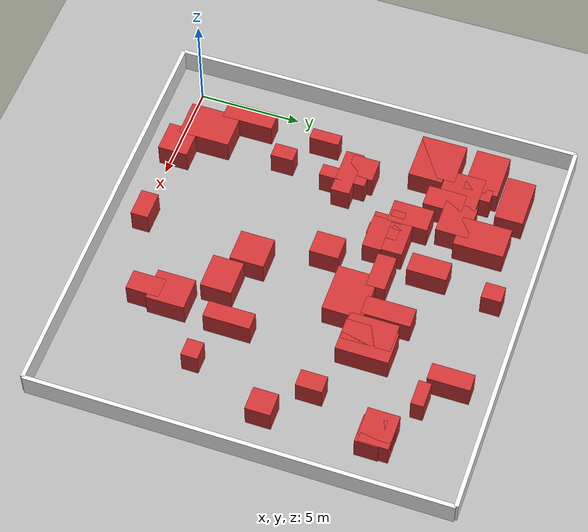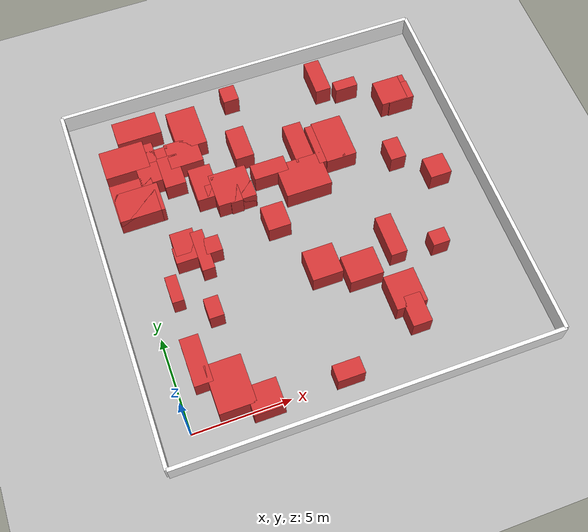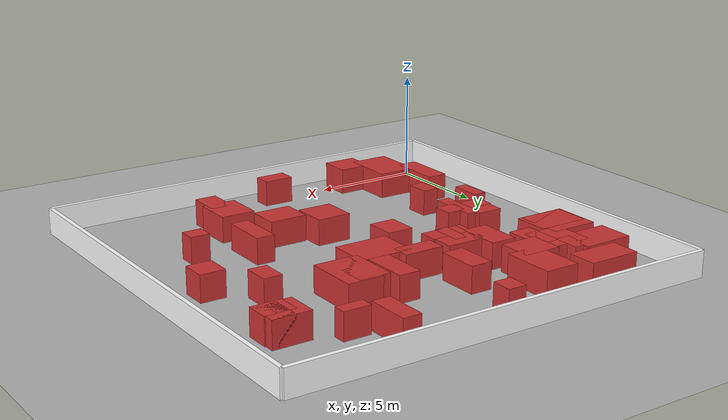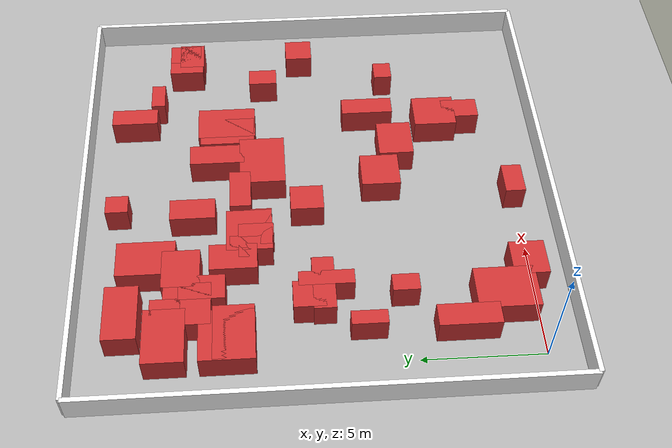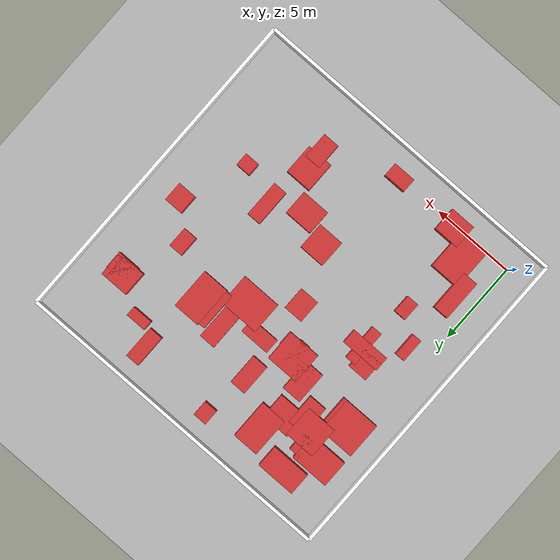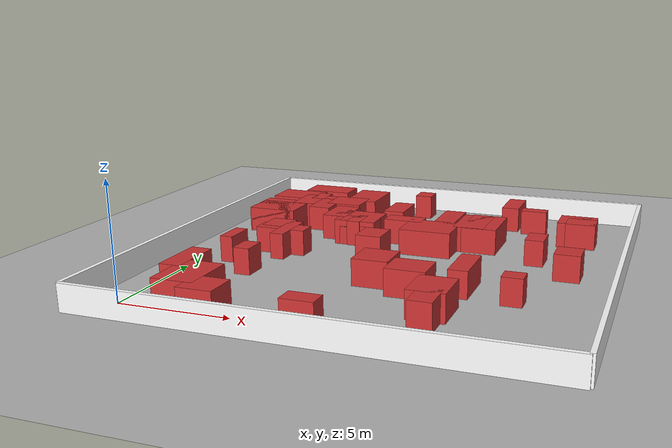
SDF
<?xml version="1.0"?>
<sdf version="1.8">
  <world name="random_room">
    <physics name="10ms" type="ignored">
      <max_step_size>0.01</max_step_size>
      <real_time_factor>1.0</real_time_factor>
    </physics>
    <plugin filename="gz-sim-physics-system"          name="gz::sim::systems::Physics"/>
    <plugin filename="gz-sim-user-commands-system"    name="gz::sim::systems::UserCommands"/>
    <plugin filename="gz-sim-scene-broadcaster-system" name="gz::sim::systems::SceneBroadcaster"/>
    <plugin filename="gz-sim-sensors-system"          name="gz::sim::systems::Sensors">
      <render_engine>ogre2</render_engine>
    </plugin>
    <light name="sun" type="directional">
      <cast_shadows>true</cast_shadows>
      <pose>0 0 10 0 0 0</pose>
      <diffuse>1 1 1 1</diffuse>
      <specular>0.5 0.5 0.5 1</specular>
      <direction>-0.5 0.1 -0.9</direction>
    </light>

    <model name="ground_plane">
      <static>true</static>
      <pose>8.5000 8.5000 0 0 0 0</pose>
      <link name="link">
        <collision name="c">
          <geometry><plane><normal>0 0 1</normal><size>20.0 20.0</size></plane></geometry>
        </collision>
        <visual name="v">
          <geometry><plane><normal>0 0 1</normal><size>20.0 20.0</size></plane></geometry>
          <material><ambient>0.7 0.7 0.7 1</ambient><diffuse>0.7 0.7 0.7 1</diffuse></material>
        </visual>
      </link>
    </model>
    <model name="wall_north">
      <static>true</static>
      <pose>8.5000 18.5000 0.6000 0 0 0</pose>
      <link name="link">
        <collision name="c">
          <geometry><box><size>20.0000 0.2000 1.2000</size></box></geometry>
        </collision>
        <visual name="v">
          <geometry><box><size>20.0000 0.2000 1.2000</size></box></geometry>
          <material>
            <ambient>1.0 1.0 1.0 1</ambient>
            <diffuse>1.0 1.0 1.0 1</diffuse>
          </material>
        </visual>
      </link>
    </model>
    <model name="wall_south">
      <static>true</static>
      <pose>8.5000 -1.5000 0.6000 0 0 0</pose>
      <link name="link">
        <collision name="c">
          <geometry><box><size>20.0000 0.2000 1.2000</size></box></geometry>
        </collision>
        <visual name="v">
          <geometry><box><size>20.0000 0.2000 1.2000</size></box></geometry>
          <material>
            <ambient>1.0 1.0 1.0 1</ambient>
            <diffuse>1.0 1.0 1.0 1</diffuse>
          </material>
        </visual>
      </link>
    </model>
    <model name="wall_east">
      <static>true</static>
      <pose>18.5000 8.5000 0.6000 0 0 0</pose>
      <link name="link">
        <collision name="c">
          <geometry><box><size>0.2000 20.0000 1.2000</size></box></geometry>
        </collision>
        <visual name="v">
          <geometry><box><size>0.2000 20.0000 1.2000</size></box></geometry>
          <material>
            <ambient>1.0 1.0 1.0 1</ambient>
            <diffuse>1.0 1.0 1.0 1</diffuse>
          </material>
        </visual>
      </link>
    </model>
    <model name="wall_west">
      <static>true</static>
      <pose>-1.5000 8.5000 0.6000 0 0 0</pose>
      <link name="link">
        <collision name="c">
          <geometry><box><size>0.2000 20.0000 1.2000</size></box></geometry>
        </collision>
        <visual name="v">
          <geometry><box><size>0.2000 20.0000 1.2000</size></box></geometry>
          <material>
            <ambient>1.0 1.0 1.0 1</ambient>
            <diffuse>1.0 1.0 1.0 1</diffuse>
          </material>
        </visual>
      </link>
    </model>
    <model name="obs_0">
      <static>true</static>
      <pose>16.2750 14.2500 0.6000 0 0 0</pose>
      <link name="link">
        <collision name="c">
          <geometry><box><size>1.0500 1.4000 1.2000</size></box></geometry>
        </collision>
        <visual name="v">
          <geometry><box><size>1.0500 1.4000 1.2000</size></box></geometry>
          <material>
            <ambient>0.8 0.2 0.2 1</ambient>
            <diffuse>0.8 0.2 0.2 1</diffuse>
          </material>
        </visual>
      </link>
    </model>
    <model name="obs_1">
      <static>true</static>
      <pose>4.6000 15.6500 0.6000 0 0 0</pose>
      <link name="link">
        <collision name="c">
          <geometry><box><size>1.6000 2.4000 1.2000</size></box></geometry>
        </collision>
        <visual name="v">
          <geometry><box><size>1.6000 2.4000 1.2000</size></box></geometry>
          <material>
            <ambient>0.8 0.2 0.2 1</ambient>
            <diffuse>0.8 0.2 0.2 1</diffuse>
          </material>
        </visual>
      </link>
    </model>
    <model name="obs_2">
      <static>true</static>
      <pose>2.3500 13.9500 0.6000 0 0 0</pose>
      <link name="link">
        <collision name="c">
          <geometry><box><size>1.9000 1.9000 1.2000</size></box></geometry>
        </collision>
        <visual name="v">
          <geometry><box><size>1.9000 1.9000 1.2000</size></box></geometry>
          <material>
            <ambient>0.8 0.2 0.2 1</ambient>
            <diffuse>0.8 0.2 0.2 1</diffuse>
          </material>
        </visual>
      </link>
    </model>
    <model name="obs_3">
      <static>true</static>
      <pose>12.1000 1.8500 0.6000 0 0 0</pose>
      <link name="link">
        <collision name="c">
          <geometry><box><size>1.0000 1.6000 1.2000</size></box></geometry>
        </collision>
        <visual name="v">
          <geometry><box><size>1.0000 1.6000 1.2000</size></box></geometry>
          <material>
            <ambient>0.8 0.2 0.2 1</ambient>
            <diffuse>0.8 0.2 0.2 1</diffuse>
          </material>
        </visual>
      </link>
    </model>
    <model name="obs_4">
      <static>true</static>
      <pose>5.8000 11.4500 0.6000 0 0 0</pose>
      <link name="link">
        <collision name="c">
          <geometry><box><size>2.0000 1.9000 1.2000</size></box></geometry>
        </collision>
        <visual name="v">
          <geometry><box><size>2.0000 1.9000 1.2000</size></box></geometry>
          <material>
            <ambient>0.8 0.2 0.2 1</ambient>
            <diffuse>0.8 0.2 0.2 1</diffuse>
          </material>
        </visual>
      </link>
    </model>
    <model name="obs_5">
      <static>true</static>
      <pose>8.7000 5.7750 0.6000 0 0 0</pose>
      <link name="link">
        <collision name="c">
          <geometry><box><size>1.6000 1.6500 1.2000</size></box></geometry>
        </collision>
        <visual name="v">
          <geometry><box><size>1.6000 1.6500 1.2000</size></box></geometry>
          <material>
            <ambient>0.8 0.2 0.2 1</ambient>
            <diffuse>0.8 0.2 0.2 1</diffuse>
          </material>
        </visual>
      </link>
    </model>
    <model name="obs_6">
      <static>true</static>
      <pose>12.4750 6.0250 0.6000 0 0 0</pose>
      <link name="link">
        <collision name="c">
          <geometry><box><size>0.8500 2.2500 1.2000</size></box></geometry>
        </collision>
        <visual name="v">
          <geometry><box><size>0.8500 2.2500 1.2000</size></box></geometry>
          <material>
            <ambient>0.8 0.2 0.2 1</ambient>
            <diffuse>0.8 0.2 0.2 1</diffuse>
          </material>
        </visual>
      </link>
    </model>
    <model name="obs_7">
      <static>true</static>
      <pose>14.5750 10.6750 0.6000 0 0 0</pose>
      <link name="link">
        <collision name="c">
          <geometry><box><size>0.8500 1.2500 1.2000</size></box></geometry>
        </collision>
        <visual name="v">
          <geometry><box><size>0.8500 1.2500 1.2000</size></box></geometry>
          <material>
            <ambient>0.8 0.2 0.2 1</ambient>
            <diffuse>0.8 0.2 0.2 1</diffuse>
          </material>
        </visual>
      </link>
    </model>
    <model name="obs_8">
      <static>true</static>
      <pose>2.2500 14.8000 0.6000 0 0 0</pose>
      <link name="link">
        <collision name="c">
          <geometry><box><size>0.7000 1.2000 1.2000</size></box></geometry>
        </collision>
        <visual name="v">
          <geometry><box><size>0.7000 1.2000 1.2000</size></box></geometry>
          <material>
            <ambient>0.8 0.2 0.2 1</ambient>
            <diffuse>0.8 0.2 0.2 1</diffuse>
          </material>
        </visual>
      </link>
    </model>
    <model name="obs_9">
      <static>true</static>
      <pose>7.3500 9.0000 0.6000 0 0 0</pose>
      <link name="link">
        <collision name="c">
          <geometry><box><size>1.2000 1.4000 1.2000</size></box></geometry>
        </collision>
        <visual name="v">
          <geometry><box><size>1.2000 1.4000 1.2000</size></box></geometry>
          <material>
            <ambient>0.8 0.2 0.2 1</ambient>
            <diffuse>0.8 0.2 0.2 1</diffuse>
          </material>
        </visual>
      </link>
    </model>
    <model name="obs_10">
      <static>true</static>
      <pose>16.1500 13.9500 0.6000 0 0 0</pose>
      <link name="link">
        <collision name="c">
          <geometry><box><size>1.4000 1.1000 1.2000</size></box></geometry>
        </collision>
        <visual name="v">
          <geometry><box><size>1.4000 1.1000 1.2000</size></box></geometry>
          <material>
            <ambient>0.8 0.2 0.2 1</ambient>
            <diffuse>0.8 0.2 0.2 1</diffuse>
          </material>
        </visual>
      </link>
    </model>
    <model name="obs_11">
      <static>true</static>
      <pose>5.7750 11.1750 0.6000 0 0 0</pose>
      <link name="link">
        <collision name="c">
          <geometry><box><size>0.6500 1.4500 1.2000</size></box></geometry>
        </collision>
        <visual name="v">
          <geometry><box><size>0.6500 1.4500 1.2000</size></box></geometry>
          <material>
            <ambient>0.8 0.2 0.2 1</ambient>
            <diffuse>0.8 0.2 0.2 1</diffuse>
          </material>
        </visual>
      </link>
    </model>
    <model name="obs_12">
      <static>true</static>
      <pose>2.1000 16.5250 0.6000 0 0 0</pose>
      <link name="link">
        <collision name="c">
          <geometry><box><size>2.4000 1.3500 1.2000</size></box></geometry>
        </collision>
        <visual name="v">
          <geometry><box><size>2.4000 1.3500 1.2000</size></box></geometry>
          <material>
            <ambient>0.8 0.2 0.2 1</ambient>
            <diffuse>0.8 0.2 0.2 1</diffuse>
          </material>
        </visual>
      </link>
    </model>
    <model name="obs_13">
      <static>true</static>
      <pose>3.7750 0.2250 0.6000 0 0 0</pose>
      <link name="link">
        <collision name="c">
          <geometry><box><size>1.5500 1.4500 1.2000</size></box></geometry>
        </collision>
        <visual name="v">
          <geometry><box><size>1.5500 1.4500 1.2000</size></box></geometry>
          <material>
            <ambient>0.8 0.2 0.2 1</ambient>
            <diffuse>0.8 0.2 0.2 1</diffuse>
          </material>
        </visual>
      </link>
    </model>
    <model name="obs_14">
      <static>true</static>
      <pose>11.7750 12.3500 0.6000 0 0 0</pose>
      <link name="link">
        <collision name="c">
          <geometry><box><size>1.6500 2.5000 1.2000</size></box></geometry>
        </collision>
        <visual name="v">
          <geometry><box><size>1.6500 2.5000 1.2000</size></box></geometry>
          <material>
            <ambient>0.8 0.2 0.2 1</ambient>
            <diffuse>0.8 0.2 0.2 1</diffuse>
          </material>
        </visual>
      </link>
    </model>
    <model name="obs_15">
      <static>true</static>
      <pose>11.2750 12.3250 0.6000 0 0 0</pose>
      <link name="link">
        <collision name="c">
          <geometry><box><size>1.4500 2.3500 1.2000</size></box></geometry>
        </collision>
        <visual name="v">
          <geometry><box><size>1.4500 2.3500 1.2000</size></box></geometry>
          <material>
            <ambient>0.8 0.2 0.2 1</ambient>
            <diffuse>0.8 0.2 0.2 1</diffuse>
          </material>
        </visual>
      </link>
    </model>
    <model name="obs_16">
      <static>true</static>
      <pose>3.1000 13.3750 0.6000 0 0 0</pose>
      <link name="link">
        <collision name="c">
          <geometry><box><size>1.1000 1.8500 1.2000</size></box></geometry>
        </collision>
        <visual name="v">
          <geometry><box><size>1.1000 1.8500 1.2000</size></box></geometry>
          <material>
            <ambient>0.8 0.2 0.2 1</ambient>
            <diffuse>0.8 0.2 0.2 1</diffuse>
          </material>
        </visual>
      </link>
    </model>
    <model name="obs_17">
      <static>true</static>
      <pose>9.5250 10.8250 0.6000 0 0 0</pose>
      <link name="link">
        <collision name="c">
          <geometry><box><size>2.4500 1.9500 1.2000</size></box></geometry>
        </collision>
        <visual name="v">
          <geometry><box><size>2.4500 1.9500 1.2000</size></box></geometry>
          <material>
            <ambient>0.8 0.2 0.2 1</ambient>
            <diffuse>0.8 0.2 0.2 1</diffuse>
          </material>
        </visual>
      </link>
    </model>
    <model name="obs_18">
      <static>true</static>
      <pose>1.2750 3.0000 0.6000 0 0 0</pose>
      <link name="link">
        <collision name="c">
          <geometry><box><size>0.9500 2.5000 1.2000</size></box></geometry>
        </collision>
        <visual name="v">
          <geometry><box><size>0.9500 2.5000 1.2000</size></box></geometry>
          <material>
            <ambient>0.8 0.2 0.2 1</ambient>
            <diffuse>0.8 0.2 0.2 1</diffuse>
          </material>
        </visual>
      </link>
    </model>
    <model name="obs_19">
      <static>true</static>
      <pose>4.5000 12.1250 0.6000 0 0 0</pose>
      <link name="link">
        <collision name="c">
          <geometry><box><size>1.2000 1.9500 1.2000</size></box></geometry>
        </collision>
        <visual name="v">
          <geometry><box><size>1.2000 1.9500 1.2000</size></box></geometry>
          <material>
            <ambient>0.8 0.2 0.2 1</ambient>
            <diffuse>0.8 0.2 0.2 1</diffuse>
          </material>
        </visual>
      </link>
    </model>
    <model name="obs_20">
      <static>true</static>
      <pose>7.4250 16.9750 0.6000 0 0 0</pose>
      <link name="link">
        <collision name="c">
          <geometry><box><size>0.8500 0.9500 1.2000</size></box></geometry>
        </collision>
        <visual name="v">
          <geometry><box><size>0.8500 0.9500 1.2000</size></box></geometry>
          <material>
            <ambient>0.8 0.2 0.2 1</ambient>
            <diffuse>0.8 0.2 0.2 1</diffuse>
          </material>
        </visual>
      </link>
    </model>
    <model name="obs_21">
      <static>true</static>
      <pose>12.0000 3.0250 0.6000 0 0 0</pose>
      <link name="link">
        <collision name="c">
          <geometry><box><size>1.6000 1.8500 1.2000</size></box></geometry>
        </collision>
        <visual name="v">
          <geometry><box><size>1.6000 1.8500 1.2000</size></box></geometry>
          <material>
            <ambient>0.8 0.2 0.2 1</ambient>
            <diffuse>0.8 0.2 0.2 1</diffuse>
          </material>
        </visual>
      </link>
    </model>
    <model name="obs_22">
      <static>true</static>
      <pose>2.8750 5.3000 0.6000 0 0 0</pose>
      <link name="link">
        <collision name="c">
          <geometry><box><size>0.7500 1.1000 1.2000</size></box></geometry>
        </collision>
        <visual name="v">
          <geometry><box><size>0.7500 1.1000 1.2000</size></box></geometry>
          <material>
            <ambient>0.8 0.2 0.2 1</ambient>
            <diffuse>0.8 0.2 0.2 1</diffuse>
          </material>
        </visual>
      </link>
    </model>
    <model name="obs_23">
      <static>true</static>
      <pose>0.9750 14.8250 0.6000 0 0 0</pose>
      <link name="link">
        <collision name="c">
          <geometry><box><size>2.3500 1.6500 1.2000</size></box></geometry>
        </collision>
        <visual name="v">
          <geometry><box><size>2.3500 1.6500 1.2000</size></box></geometry>
          <material>
            <ambient>0.8 0.2 0.2 1</ambient>
            <diffuse>0.8 0.2 0.2 1</diffuse>
          </material>
        </visual>
      </link>
    </model>
    <model name="obs_24">
      <static>true</static>
      <pose>3.0500 8.5500 0.6000 0 0 0</pose>
      <link name="link">
        <collision name="c">
          <geometry><box><size>2.4000 0.9000 1.2000</size></box></geometry>
        </collision>
        <visual name="v">
          <geometry><box><size>2.4000 0.9000 1.2000</size></box></geometry>
          <material>
            <ambient>0.8 0.2 0.2 1</ambient>
            <diffuse>0.8 0.2 0.2 1</diffuse>
          </material>
        </visual>
      </link>
    </model>
    <model name="obs_25">
      <static>true</static>
      <pose>7.9000 0.1250 0.6000 0 0 0</pose>
      <link name="link">
        <collision name="c">
          <geometry><box><size>1.4000 0.8500 1.2000</size></box></geometry>
        </collision>
        <visual name="v">
          <geometry><box><size>1.4000 0.8500 1.2000</size></box></geometry>
          <material>
            <ambient>0.8 0.2 0.2 1</ambient>
            <diffuse>0.8 0.2 0.2 1</diffuse>
          </material>
        </visual>
      </link>
    </model>
    <model name="obs_26">
      <static>true</static>
      <pose>4.8000 11.5750 0.6000 0 0 0</pose>
      <link name="link">
        <collision name="c">
          <geometry><box><size>0.7000 0.6500 1.2000</size></box></geometry>
        </collision>
        <visual name="v">
          <geometry><box><size>0.7000 0.6500 1.2000</size></box></geometry>
          <material>
            <ambient>0.8 0.2 0.2 1</ambient>
            <diffuse>0.8 0.2 0.2 1</diffuse>
          </material>
        </visual>
      </link>
    </model>
    <model name="obs_27">
      <static>true</static>
      <pose>0.9000 12.4000 0.6000 0 0 0</pose>
      <link name="link">
        <collision name="c">
          <geometry><box><size>2.2000 2.2000 1.2000</size></box></geometry>
        </collision>
        <visual name="v">
          <geometry><box><size>2.2000 2.2000 1.2000</size></box></geometry>
          <material>
            <ambient>0.8 0.2 0.2 1</ambient>
            <diffuse>0.8 0.2 0.2 1</diffuse>
          </material>
        </visual>
      </link>
    </model>
    <model name="obs_28">
      <static>true</static>
      <pose>3.2750 8.4250 0.6000 0 0 0</pose>
      <link name="link">
        <collision name="c">
          <geometry><box><size>0.6500 2.2500 1.2000</size></box></geometry>
        </collision>
        <visual name="v">
          <geometry><box><size>0.6500 2.2500 1.2000</size></box></geometry>
          <material>
            <ambient>0.8 0.2 0.2 1</ambient>
            <diffuse>0.8 0.2 0.2 1</diffuse>
          </material>
        </visual>
      </link>
    </model>
    <model name="obs_29">
      <static>true</static>
      <pose>7.0000 13.8000 0.6000 0 0 0</pose>
      <link name="link">
        <collision name="c">
          <geometry><box><size>1.0000 1.9000 1.2000</size></box></geometry>
        </collision>
        <visual name="v">
          <geometry><box><size>1.0000 1.9000 1.2000</size></box></geometry>
          <material>
            <ambient>0.8 0.2 0.2 1</ambient>
            <diffuse>0.8 0.2 0.2 1</diffuse>
          </material>
        </visual>
      </link>
    </model>
    <model name="obs_30">
      <static>true</static>
      <pose>5.9500 10.9500 0.6000 0 0 0</pose>
      <link name="link">
        <collision name="c">
          <geometry><box><size>1.8000 0.9000 1.2000</size></box></geometry>
        </collision>
        <visual name="v">
          <geometry><box><size>1.8000 0.9000 1.2000</size></box></geometry>
          <material>
            <ambient>0.8 0.2 0.2 1</ambient>
            <diffuse>0.8 0.2 0.2 1</diffuse>
          </material>
        </visual>
      </link>
    </model>
    <model name="obs_31">
      <static>true</static>
      <pose>2.5500 9.1500 0.6000 0 0 0</pose>
      <link name="link">
        <collision name="c">
          <geometry><box><size>1.2000 1.3000 1.2000</size></box></geometry>
        </collision>
        <visual name="v">
          <geometry><box><size>1.2000 1.3000 1.2000</size></box></geometry>
          <material>
            <ambient>0.8 0.2 0.2 1</ambient>
            <diffuse>0.8 0.2 0.2 1</diffuse>
          </material>
        </visual>
      </link>
    </model>
    <model name="obs_32">
      <static>true</static>
      <pose>9.9500 12.7750 0.6000 0 0 0</pose>
      <link name="link">
        <collision name="c">
          <geometry><box><size>1.0000 2.3500 1.2000</size></box></geometry>
        </collision>
        <visual name="v">
          <geometry><box><size>1.0000 2.3500 1.2000</size></box></geometry>
          <material>
            <ambient>0.8 0.2 0.2 1</ambient>
            <diffuse>0.8 0.2 0.2 1</diffuse>
          </material>
        </visual>
      </link>
    </model>
    <model name="obs_33">
      <static>true</static>
      <pose>12.3750 16.4500 0.6000 0 0 0</pose>
      <link name="link">
        <collision name="c">
          <geometry><box><size>0.8500 2.0000 1.2000</size></box></geometry>
        </collision>
        <visual name="v">
          <geometry><box><size>0.8500 2.0000 1.2000</size></box></geometry>
          <material>
            <ambient>0.8 0.2 0.2 1</ambient>
            <diffuse>0.8 0.2 0.2 1</diffuse>
          </material>
        </visual>
      </link>
    </model>
    <model name="obs_34">
      <static>true</static>
      <pose>16.2750 8.9500 0.6000 0 0 0</pose>
      <link name="link">
        <collision name="c">
          <geometry><box><size>1.1500 1.2000 1.2000</size></box></geometry>
        </collision>
        <visual name="v">
          <geometry><box><size>1.1500 1.2000 1.2000</size></box></geometry>
          <material>
            <ambient>0.8 0.2 0.2 1</ambient>
            <diffuse>0.8 0.2 0.2 1</diffuse>
          </material>
        </visual>
      </link>
    </model>
    <model name="obs_35">
      <static>true</static>
      <pose>7.9750 11.8000 0.6000 0 0 0</pose>
      <link name="link">
        <collision name="c">
          <geometry><box><size>1.8500 0.9000 1.2000</size></box></geometry>
        </collision>
        <visual name="v">
          <geometry><box><size>1.8500 0.9000 1.2000</size></box></geometry>
          <material>
            <ambient>0.8 0.2 0.2 1</ambient>
            <diffuse>0.8 0.2 0.2 1</diffuse>
          </material>
        </visual>
      </link>
    </model>
    <model name="obs_36">
      <static>true</static>
      <pose>4.0250 14.2250 0.6000 0 0 0</pose>
      <link name="link">
        <collision name="c">
          <geometry><box><size>1.7500 1.5500 1.2000</size></box></geometry>
        </collision>
        <visual name="v">
          <geometry><box><size>1.7500 1.5500 1.2000</size></box></geometry>
          <material>
            <ambient>0.8 0.2 0.2 1</ambient>
            <diffuse>0.8 0.2 0.2 1</diffuse>
          </material>
        </visual>
      </link>
    </model>
    <model name="obs_37">
      <static>true</static>
      <pose>1.3500 6.8750 0.6000 0 0 0</pose>
      <link name="link">
        <collision name="c">
          <geometry><box><size>0.6000 1.4500 1.2000</size></box></geometry>
        </collision>
        <visual name="v">
          <geometry><box><size>0.6000 1.4500 1.2000</size></box></geometry>
          <material>
            <ambient>0.8 0.2 0.2 1</ambient>
            <diffuse>0.8 0.2 0.2 1</diffuse>
          </material>
        </visual>
      </link>
    </model>
    <model name="obs_38">
      <static>true</static>
      <pose>10.4750 4.9500 0.6000 0 0 0</pose>
      <link name="link">
        <collision name="c">
          <geometry><box><size>1.7500 1.5000 1.2000</size></box></geometry>
        </collision>
        <visual name="v">
          <geometry><box><size>1.7500 1.5000 1.2000</size></box></geometry>
          <material>
            <ambient>0.8 0.2 0.2 1</ambient>
            <diffuse>0.8 0.2 0.2 1</diffuse>
          </material>
        </visual>
      </link>
    </model>
    <model name="obs_39">
      <static>true</static>
      <pose>14.7000 5.1000 0.6000 0 0 0</pose>
      <link name="link">
        <collision name="c">
          <geometry><box><size>0.9000 0.8000 1.2000</size></box></geometry>
        </collision>
        <visual name="v">
          <geometry><box><size>0.9000 0.8000 1.2000</size></box></geometry>
          <material>
            <ambient>0.8 0.2 0.2 1</ambient>
            <diffuse>0.8 0.2 0.2 1</diffuse>
          </material>
        </visual>
      </link>
    </model>
    <model name="obs_40">
      <static>true</static>
      <pose>13.6250 15.4500 0.6000 0 0 0</pose>
      <link name="link">
        <collision name="c">
          <geometry><box><size>1.2500 0.6000 1.2000</size></box></geometry>
        </collision>
        <visual name="v">
          <geometry><box><size>1.2500 0.6000 1.2000</size></box></geometry>
          <material>
            <ambient>0.8 0.2 0.2 1</ambient>
            <diffuse>0.8 0.2 0.2 1</diffuse>
          </material>
        </visual>
      </link>
    </model>
    <model name="obs_41">
      <static>true</static>
      <pose>1.0250 12.1250 0.6000 0 0 0</pose>
      <link name="link">
        <collision name="c">
          <geometry><box><size>2.3500 1.6500 1.2000</size></box></geometry>
        </collision>
        <visual name="v">
          <geometry><box><size>2.3500 1.6500 1.2000</size></box></geometry>
          <material>
            <ambient>0.8 0.2 0.2 1</ambient>
            <diffuse>0.8 0.2 0.2 1</diffuse>
          </material>
        </visual>
      </link>
    </model>
    <model name="obs_42">
      <static>true</static>
      <pose>15.7750 14.2000 0.6000 0 0 0</pose>
      <link name="link">
        <collision name="c">
          <geometry><box><size>1.4500 1.5000 1.2000</size></box></geometry>
        </collision>
        <visual name="v">
          <geometry><box><size>1.4500 1.5000 1.2000</size></box></geometry>
          <material>
            <ambient>0.8 0.2 0.2 1</ambient>
            <diffuse>0.8 0.2 0.2 1</diffuse>
          </material>
        </visual>
      </link>
    </model>
    <model name="obs_43">
      <static>true</static>
      <pose>5.2000 11.9000 0.6000 0 0 0</pose>
      <link name="link">
        <collision name="c">
          <geometry><box><size>0.6000 0.7000 1.2000</size></box></geometry>
        </collision>
        <visual name="v">
          <geometry><box><size>0.6000 0.7000 1.2000</size></box></geometry>
          <material>
            <ambient>0.8 0.2 0.2 1</ambient>
            <diffuse>0.8 0.2 0.2 1</diffuse>
          </material>
        </visual>
      </link>
    </model>
    <model name="obs_44">
      <static>true</static>
      <pose>2.4250 1.3500 0.6000 0 0 0</pose>
      <link name="link">
        <collision name="c">
          <geometry><box><size>1.8500 2.5000 1.2000</size></box></geometry>
        </collision>
        <visual name="v">
          <geometry><box><size>1.8500 2.5000 1.2000</size></box></geometry>
          <material>
            <ambient>0.8 0.2 0.2 1</ambient>
            <diffuse>0.8 0.2 0.2 1</diffuse>
          </material>
        </visual>
      </link>
    </model>
  </world>
</sdf>
